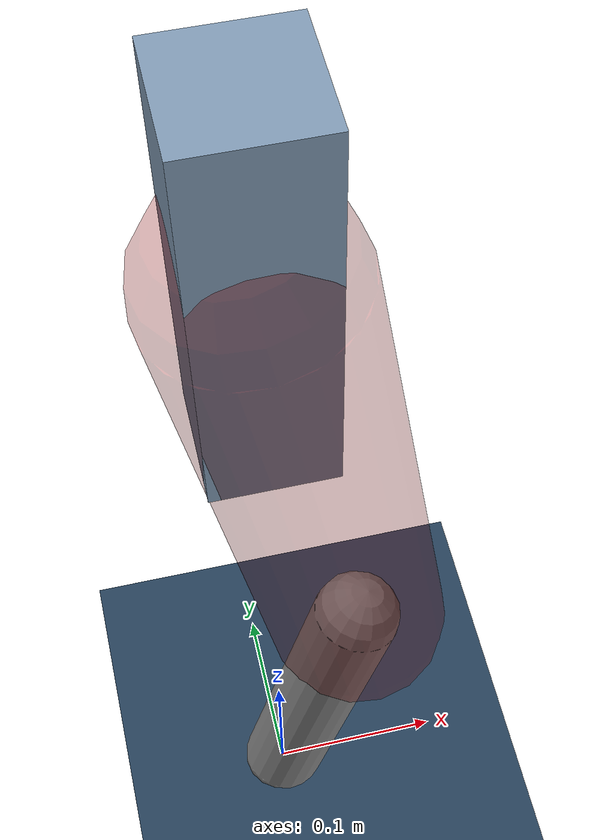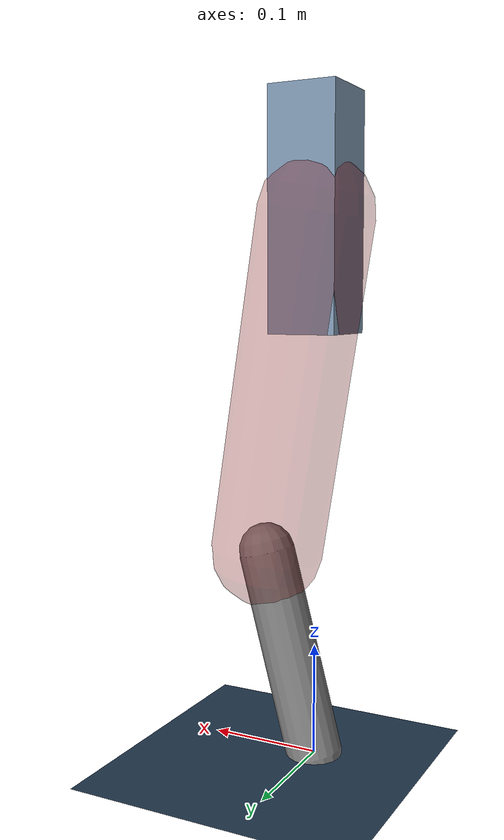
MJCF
<mujoco model="Hopper2D">
	<compiler inertiafromgeom="true" angle="radian" />
	<option timestep="0.001" integrator="implicit" cone="elliptic" solver="Newton" tolerance="1e-10" />

	<default>
		<geom contype="1" conaffinity="1" condim="3" friction="2 0.005 0.0001" solref="0.005 1" />
		<joint limited="true" damping="0.1" />
	</default>

	<asset>
		<texture name="skybox" type="skybox" builtin="gradient" rgb1=".4 .6 .8" rgb2="0 0 0" width="800" height="800" />
		<texture name="grid" type="2d" builtin="checker" rgb1=".1 .2 .3" rgb2=".2 .3 .4" width="300" height="300" mark="edge" markrgb=".2 .3 .4" />
		<material name="ground" texture="grid" texrepeat="1 1" texuniform="true" reflectance="0.1" />
		<material name="leg" rgba="0.5 0.6 0.7 1" />
	</asset>

	<worldbody>

		<geom name="floor" type="plane" size="5 5 0.25" material="ground" />

		<light directional="false" diffuse="0.8 0.8 0.8" specular="0.3 0.3 0.3" pos="0 0 2" dir="0 0 -1" />
		<light mode="targetbodycom" target="base" directional="false" diffuse="0.8 0.8 0.8" specular="0.3 0.3 0.3" pos="0 0 2" dir="0 0 -1" />

		<camera name="fixed" pos="0 -2 1" xyaxes="1 0 0 0 0 1" />
		<camera name="tracking" mode="trackcom" pos="0 -3 1" />

		<body name="root" pos="0 0 0.47442146294489357">
			<joint name="slide_x" type="slide" axis="1 0 0" range="-100 100" />
			<joint name="slide_z" type="slide" axis="0 0 1" range="0 10" />

			<body name="base" pos="0 0 0">
				<geom name="torso" type="box" size="0.03 0.03 0.1" mass="2.182" material="leg" />

				<body name="link1" pos="0 0 0" euler="0 1.4098709784015617 0">
					<joint type="hinge" axis="0 -1 0" pos="0 0 0" name="hinge1" limited="true" range="-3.14 3.14" stiffness="0" damping="0.1" />
					<geom name="thigh" type="capsule" fromto="0 0 0 0.2972272892919579 0 0" size="0.05" rgba="0.5 0 0 0.3" mass="0.9812136810882864" />

					<body name="link2" pos="0.2972272892919579 0 0" euler="0 0.41816930601084745 0">
						<joint type="hinge" axis="0 -1 0" pos="0 0 0" name="hinge2" limited="true" range="-3.14 3.14" stiffness="0" damping="0.1" />
						<geom name="shank" type="capsule" fromto="0 0 0 0.18719417365293567 0 0" size="0.025" mass="0.39005533892234856" />

					</body>
				</body>
			</body>
		</body>
	</worldbody>

	<actuator>
		<motor name="torque1" joint="hinge1" ctrlrange="-66.85489813529402 66.85489813529402" ctrllimited="true" gear="1" />
		<motor name="torque2" joint="hinge2" ctrlrange="-64.04605246249385 64.04605246249385" ctrllimited="true" gear="1" />
	</actuator>
</mujoco>
